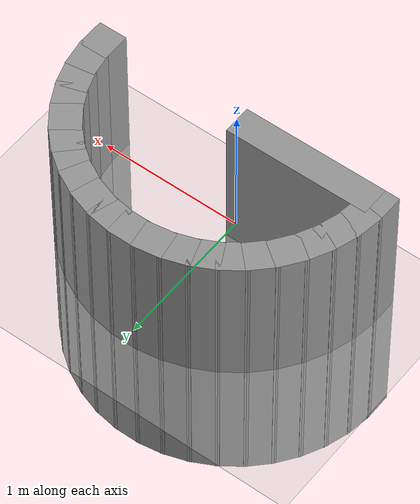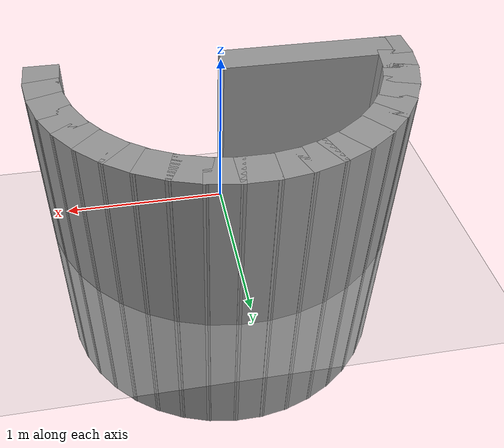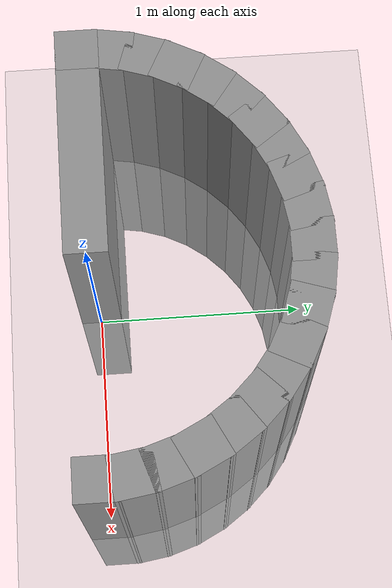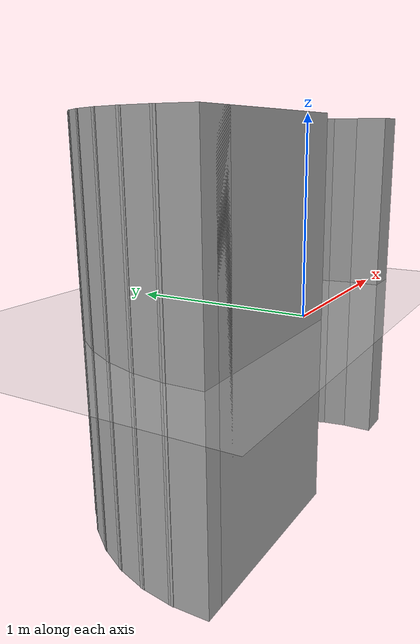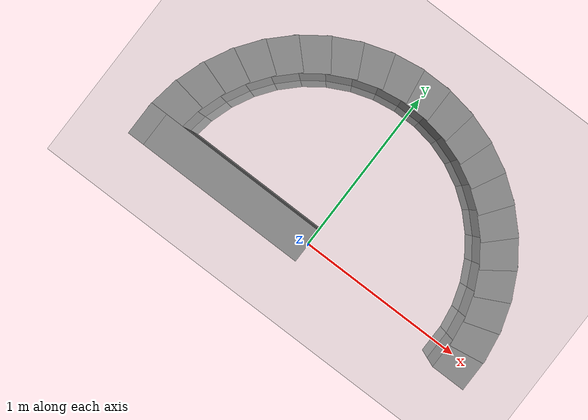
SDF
<sdf version="1.4">
  <world name="default">

    <scene>
      <ambient>0.4 0.4 0.4 1</ambient>
      <background>0.7 0.7 0.7 1</background>
      <shadows>true</shadows>
    </scene>

    <!-- A global light source -->
    <include>
      <uri>model://sun</uri>
    </include>

    <!-- A ground plane -->
    <include>
      <uri>model://ground_plane</uri>
    </include>

    <!-- Open part 1 meter -->
    <include>
      <pose>-0.5 0 0 0 0 0</pose>
      <uri>model://wall_1</uri>
    </include>

    <!-- Round part (half circle) -->
    <include>
      <pose>-1 0 0 0 0 0</pose>
      <uri>model://wall_curve</uri>
      <name>part0</name>
    </include>
    <include>
      <pose>-0.988 0.157 0 0 0 -0.157</pose>
      <uri>model://wall_curve</uri>
      <name>part1</name>
    </include>
    <include>
      <pose>-0.951 0.31 0 0 0 -0.314</pose>
      <uri>model://wall_curve</uri>
      <name>part2</name>
    </include>
    <include>
      <pose>-0.891 0.454 0 0 0 -0.471</pose>
      <uri>model://wall_curve</uri>
      <name>part3</name>
    </include>
    <include>
      <pose>-0.809 0.588 0 0 0 -0.628</pose>
      <uri>model://wall_curve</uri>
      <name>part4</name>
    </include>
    <include>
      <pose>-0.707 0.707 0 0 0 -0.785</pose>
      <uri>model://wall_curve</uri>
      <name>part5</name>
    </include>
    <include>
      <pose>-0.588 0.809 0 0 0 -0.942</pose>
      <uri>model://wall_curve</uri>
      <name>part6</name>
    </include>
    <include>
      <pose>-0.454 0.891 0 0 0 -1.1</pose>
      <uri>model://wall_curve</uri>
      <name>part7</name>
    </include>
    <include>
      <pose>-0.31 0.951 0 0 0 -1.256</pose>
      <uri>model://wall_curve</uri>
      <name>part8</name>
    </include>
    <include>
      <pose>-0.157 0.988 0 0 0 -1.413</pose>
      <uri>model://wall_curve</uri>
      <name>part9</name>
    </include>

     <include>
      <pose>0 1 0 0 0 1.57</pose>
      <uri>model://wall_curve</uri>
      <name>part10</name>
    </include>

    <include>
      <pose>0.157 0.988 0 0 0 1.413</pose>
      <uri>model://wall_curve</uri>
      <name>part11</name>
    </include>
    <include>
      <pose>0.31 0.951 0 0 0 1.256</pose>
      <uri>model://wall_curve</uri>
      <name>part12</name>
    </include>
    <include>
      <pose>0.454 0.891 0 0 0 1.1</pose>
      <uri>model://wall_curve</uri>
      <name>part13</name>
    </include>
    <include>
      <pose>0.588 0.809 0 0 0 0.942</pose>
      <uri>model://wall_curve</uri>
      <name>part14</name>
    </include>
    <include>
      <pose>0.707 0.707 0 0 0 0.785</pose>
      <uri>model://wall_curve</uri>
      <name>part15</name>
    </include>
    <include>
      <pose>0.809 0.588 0 0 0 0.628</pose>
      <uri>model://wall_curve</uri>
      <name>part16</name>
    </include>
    <include>
      <pose>0.891 0.454 0 0 0 0.471</pose>
      <uri>model://wall_curve</uri>
      <name>part17</name>
    </include>
    <include>
      <pose>0.951 0.31 0 0 0 0.314</pose>
      <uri>model://wall_curve</uri>
      <name>part18</name>
    </include>
    <include>
      <pose>0.988 0.157 0 0 0 0.157</pose>
      <uri>model://wall_curve</uri>
      <name>part19</name>
    </include>
    <include>
      <pose>1 0 0 0 0 0</pose>
      <uri>model://wall_curve</uri>
      <name>part20</name>
    </include>

    <physics type="ode">
      <real_time_update_rate>1000.0</real_time_update_rate>
      <max_step_size>0.001</max_step_size>
      <real_time_factor>1</real_time_factor>
      <ode>
        <solver>
          <type>quick</type>
          <iters>150</iters>
          <precon_iters>0</precon_iters>
          <sor>1.400000</sor>
          <use_dynamic_moi_rescaling>1</use_dynamic_moi_rescaling>
        </solver>
        <constraints>
          <cfm>0.00001</cfm>
          <erp>0.2</erp>
          <contact_max_correcting_vel>2000.000000</contact_max_correcting_vel>
          <contact_surface_layer>0.01000</contact_surface_layer>
        </constraints>
      </ode>
    </physics>

  </world>

</sdf>

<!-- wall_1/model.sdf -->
<sdf version="1.5">
    <model name="wall_1">
        <static>true</static>
        <link name="link">
        <collision name="collision">
            <geometry>
                <box>
                    <!-- default thickness = 0.2  -->
                    <!-- default width = 1.0  -->
                    <!-- default height = 2.0  -->
                    <size>1.0 0.2 2.0</size>
                </box>
            </geometry>
        </collision>
        <visual name="visual">
            <cast_shadows>false</cast_shadows>
            <geometry>
            <box>
                <size>1.0 0.2 2.0</size>
            </box>
            </geometry>
            <material>
                <script>
                    <uri>model://grey_wall/materials/scripts</uri>
                    <uri>model://grey_wall/materials/textures</uri>
                    <name>Gazebo_Grey</name>
                </script>
            </material>
        </visual>
        </link>
    </model>
</sdf>

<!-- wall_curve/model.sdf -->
<sdf version="1.5">
    <model name="wall_curve">
        <static>true</static>
        <link name="link">
        <collision name="collision">
            <geometry>
                <box>
                    <!-- default thickness = 0.2  -->
                    <!-- default width = 0.2  -->
                    <!-- default height = 2.0  -->
                    <size>0.2 0.2 2.0</size>
                </box>
            </geometry>
        </collision>
        <visual name="visual">
            <cast_shadows>false</cast_shadows>
            <geometry>
            <box>
                <size>0.2 0.2 2.0</size>
            </box>
            </geometry>
            <material>
                <script>
                    <uri>model://grey_wall/materials/scripts</uri>
                    <uri>model://grey_wall/materials/textures</uri>
                    <name>Gazebo_Grey2</name>
                </script>
            </material>
        </visual>
        </link>
    </model>
</sdf>
